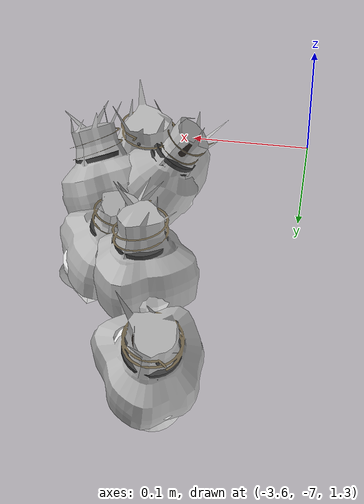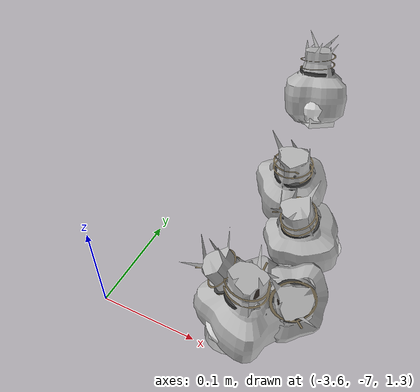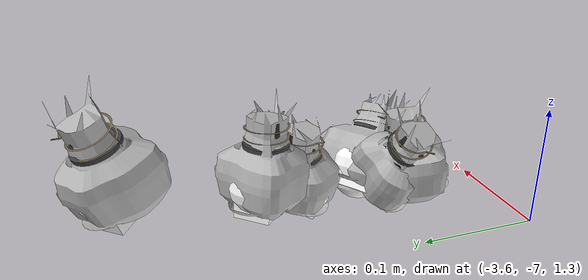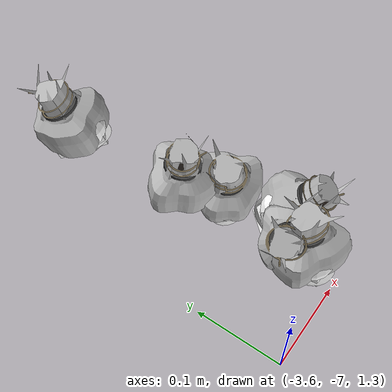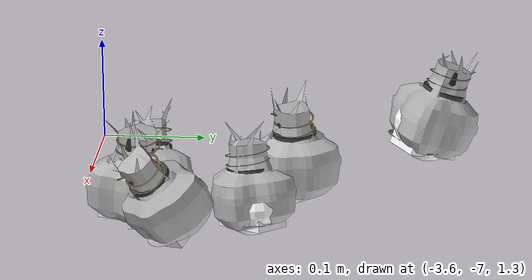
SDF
<sdf version="1.11">
 <world name="peach_orchard">
  <model name="ground">
   <static>true</static>
   <link name="link">
    <visual name="soil">
     <geometry><plane><normal>0 0 1</normal><size>32 22</size></plane></geometry>
     <material>
      <ambient>1 1 1 1</ambient>
      <diffuse>1 1 1 1</diffuse>
      <specular>0.1 0.1 0.1 1</specular>
      <pbr>
       <metal>
        <albedo_map>textures/soil_albedo.png</albedo_map>
        <normal_map type="tangent">textures/soil_normal.png</normal_map>
        <roughness>0.95</roughness>
        <metalness>0</metalness>
       </metal>
      </pbr>
     </material>
    </visual>
    <collision name="c_soil">
     <geometry><plane><normal>0 0 1</normal><size>32 22</size></plane></geometry>
    </collision>
   </link>
  </model>
  <model name="peach_tree_r1_t0_02">
   <pose>-3.51072 -6.6839 1.32639 0 0.34721 1.93507</pose>
   <static>true</static>
   <link name="bag">
    <visual name="bag_mesh">
     <pose>0 0 0.0439079 0 0 0</pose>
     <geometry>
      <mesh><uri>model://peach_sim/meshes/bagged_peach.glb</uri><scale>0.987515 1.07317 0.997907</scale></mesh>
     </geometry>
    </visual>
    <visual name="body">
     <pose>0 0 0.0259079 0 0 0</pose>
     <geometry><ellipsoid><radii>0.0370318 0.0279025 0.0279805</radii></ellipsoid></geometry>
     <material>
      <ambient>1 1 1 1</ambient>
      <diffuse>1 1 1 1</diffuse>
      <specular>0.1 0.1 0.1 1</specular>
      <pbr>
       <metal>
        <albedo_map>textures/paper_bag_albedo.png</albedo_map>
        <normal_map type="tangent">textures/paper_bag_normal.png</normal_map>
        <roughness>0.72</roughness>
        <metalness>0</metalness>
       </metal>
      </pbr>
     </material>
    </visual>
    <visual name="bottom_fold">
     <pose>0 0 0.012 0 0 0.35</pose>
     <geometry><box><size>0.0573993 0.0320879 0.022</size></box></geometry>
     <material>
      <ambient>1 1 1 1</ambient>
      <diffuse>1 1 1 1</diffuse>
      <specular>0.1 0.1 0.1 1</specular>
      <pbr>
       <metal>
        <albedo_map>textures/paper_bag_albedo.png</albedo_map>
        <normal_map type="tangent">textures/paper_bag_normal.png</normal_map>
        <roughness>0.8</roughness>
        <metalness>0</metalness>
       </metal>
      </pbr>
     </material>
    </visual>
    <visual name="fruit">
     <pose>0 0 0.0203116 0 0 0</pose>
     <geometry><sphere><radius>0.027364</radius></sphere></geometry>
     <material>
      <ambient>1 1 1 1</ambient>
      <diffuse>1 1 1 1</diffuse>
      <specular>0.1 0.1 0.1 1</specular>
      <pbr>
       <metal>
        <albedo_map>textures/fruit_skin_albedo.png</albedo_map>
        <normal_map type="tangent">textures/fruit_skin_normal.png</normal_map>
        <roughness>0.55</roughness>
        <metalness>0</metalness>
       </metal>
      </pbr>
     </material>
    </visual>
    <visual name="neck">
     <pose>0 0 0.0608158 0 0 0</pose>
     <geometry><cylinder><radius>0.013</radius><length>0.018</length></cylinder></geometry>
     <material>
      <ambient>1 1 1 1</ambient>
      <diffuse>1 1 1 1</diffuse>
      <specular>0.1 0.1 0.1 1</specular>
      <pbr>
       <metal>
        <albedo_map>textures/paper_bag_albedo.png</albedo_map>
        <normal_map type="tangent">textures/paper_bag_normal.png</normal_map>
        <roughness>0.75</roughness>
        <metalness>0</metalness>
       </metal>
      </pbr>
     </material>
    </visual>
    <visual name="gather">
     <pose>0 0 0.0418158 0 0 0</pose>
     <geometry><cylinder><radius>0.019</radius><length>0.02</length></cylinder></geometry>
     <material>
      <ambient>1 1 1 1</ambient>
      <diffuse>1 1 1 1</diffuse>
      <specular>0.1 0.1 0.1 1</specular>
      <pbr>
       <metal>
        <albedo_map>textures/paper_bag_albedo.png</albedo_map>
        <normal_map type="tangent">textures/paper_bag_normal.png</normal_map>
        <roughness>0.8</roughness>
        <metalness>0</metalness>
       </metal>
      </pbr>
     </material>
    </visual>
    <visual name="inner_paper">
     <pose>0 0 0.0658158 0 0 0</pose>
     <geometry><cylinder><radius>0.01</radius><length>0.008</length></cylinder></geometry>
     <material>
      <ambient>0.180392 0.14902 0.133333 1</ambient>
      <diffuse>0.180392 0.14902 0.133333 1</diffuse>
      <specular>0.1 0.1 0.1 1</specular>
     </material>
    </visual>
    <visual name="wire_0">
     <pose>0 0 0.0558158 0 0 0</pose>
     <geometry><cylinder><radius>0.0205</radius><length>0.0035</length></cylinder></geometry>
     <material>
      <ambient>0.25 0.25 0.25 1</ambient>
      <diffuse>0.25 0.25 0.25 1</diffuse>
      <specular>0.1 0.1 0.1 1</specular>
     </material>
    </visual>
    <visual name="wire_1">
     <pose>0 0 0.0628158 0 0 0</pose>
     <geometry><cylinder><radius>0.0205</radius><length>0.0035</length></cylinder></geometry>
     <material>
      <ambient>0.25 0.25 0.25 1</ambient>
      <diffuse>0.25 0.25 0.25 1</diffuse>
      <specular>0.1 0.1 0.1 1</specular>
     </material>
    </visual>
    <visual name="wire_tail">
     <pose>0.01 0 0.0638158 0 0.521618 0</pose>
     <geometry><cylinder><radius>0.0012</radius><length>0.026</length></cylinder></geometry>
     <material>
      <ambient>0.25 0.25 0.25 1</ambient>
      <diffuse>0.25 0.25 0.25 1</diffuse>
      <specular>0.1 0.1 0.1 1</specular>
     </material>
    </visual>
    <collision name="c_body">
     <pose>0 0 0.0259079 0 0 0</pose>
     <geometry><cylinder><radius>0.0370318</radius><length>0.0518158</length></cylinder></geometry>
    </collision>
   </link>
  </model>
  <model name="peach_tree_r1_t0_03">
   <pose>-3.48896 -6.7995 1.28958 0 0.0650426 -1.07277</pose>
   <static>true</static>
   <link name="bag">
    <visual name="bag_mesh">
     <pose>0 0 0.0437917 0 0 -0</pose>
     <geometry>
      <mesh><uri>model://peach_sim/meshes/bagged_peach.glb</uri><scale>0.949374 1.1218 0.995265</scale></mesh>
     </geometry>
    </visual>
    <visual name="body">
     <pose>0 0 0.0257917 0 0 0</pose>
     <geometry><ellipsoid><radii>0.0356015 0.0291669 0.027855</radii></ellipsoid></geometry>
     <material>
      <ambient>1 1 1 1</ambient>
      <diffuse>1 1 1 1</diffuse>
      <specular>0.1 0.1 0.1 1</specular>
      <pbr>
       <metal>
        <albedo_map>textures/paper_bag_albedo.png</albedo_map>
        <normal_map type="tangent">textures/paper_bag_normal.png</normal_map>
        <roughness>0.72</roughness>
        <metalness>0</metalness>
       </metal>
      </pbr>
     </material>
    </visual>
    <visual name="bottom_fold">
     <pose>0 0 0.012 0 0 0.35</pose>
     <geometry><box><size>0.0551824 0.033542 0.022</size></box></geometry>
     <material>
      <ambient>1 1 1 1</ambient>
      <diffuse>1 1 1 1</diffuse>
      <specular>0.1 0.1 0.1 1</specular>
      <pbr>
       <metal>
        <albedo_map>textures/paper_bag_albedo.png</albedo_map>
        <normal_map type="tangent">textures/paper_bag_normal.png</normal_map>
        <roughness>0.8</roughness>
        <metalness>0</metalness>
       </metal>
      </pbr>
     </material>
    </visual>
    <visual name="fruit">
     <pose>0 0 0.018772 0 0 0</pose>
     <geometry><sphere><radius>0.0257629</radius></sphere></geometry>
     <material>
      <ambient>1 1 1 1</ambient>
      <diffuse>1 1 1 1</diffuse>
      <specular>0.1 0.1 0.1 1</specular>
      <pbr>
       <metal>
        <albedo_map>textures/fruit_skin_albedo.png</albedo_map>
        <normal_map type="tangent">textures/fruit_skin_normal.png</normal_map>
        <roughness>0.55</roughness>
        <metalness>0</metalness>
       </metal>
      </pbr>
     </material>
    </visual>
    <visual name="neck">
     <pose>0 0 0.0605834 0 0 0</pose>
     <geometry><cylinder><radius>0.013</radius><length>0.018</length></cylinder></geometry>
     <material>
      <ambient>1 1 1 1</ambient>
      <diffuse>1 1 1 1</diffuse>
      <specular>0.1 0.1 0.1 1</specular>
      <pbr>
       <metal>
        <albedo_map>textures/paper_bag_albedo.png</albedo_map>
        <normal_map type="tangent">textures/paper_bag_normal.png</normal_map>
        <roughness>0.75</roughness>
        <metalness>0</metalness>
       </metal>
      </pbr>
     </material>
    </visual>
    <visual name="gather">
     <pose>0 0 0.0415834 0 0 0</pose>
     <geometry><cylinder><radius>0.019</radius><length>0.02</length></cylinder></geometry>
     <material>
      <ambient>1 1 1 1</ambient>
      <diffuse>1 1 1 1</diffuse>
      <specular>0.1 0.1 0.1 1</specular>
      <pbr>
       <metal>
        <albedo_map>textures/paper_bag_albedo.png</albedo_map>
        <normal_map type="tangent">textures/paper_bag_normal.png</normal_map>
        <roughness>0.8</roughness>
        <metalness>0</metalness>
       </metal>
      </pbr>
     </material>
    </visual>
    <visual name="inner_paper">
     <pose>0 0 0.0655834 0 0 0</pose>
     <geometry><cylinder><radius>0.01</radius><length>0.008</length></cylinder></geometry>
     <material>
      <ambient>0.180392 0.14902 0.133333 1</ambient>
      <diffuse>0.180392 0.14902 0.133333 1</diffuse>
      <specular>0.1 0.1 0.1 1</specular>
     </material>
    </visual>
    <visual name="wire_0">
     <pose>0 0 0.0555834 0 0 0</pose>
     <geometry><cylinder><radius>0.0205</radius><length>0.0035</length></cylinder></geometry>
     <material>
      <ambient>0.25 0.25 0.25 1</ambient>
      <diffuse>0.25 0.25 0.25 1</diffuse>
      <specular>0.1 0.1 0.1 1</specular>
     </material>
    </visual>
    <visual name="wire_1">
     <pose>0 0 0.0625834 0 0 0</pose>
     <geometry><cylinder><radius>0.0205</radius><length>0.0035</length></cylinder></geometry>
     <material>
      <ambient>0.25 0.25 0.25 1</ambient>
      <diffuse>0.25 0.25 0.25 1</diffuse>
      <specular>0.1 0.1 0.1 1</specular>
     </material>
    </visual>
    <visual name="wire_tail">
     <pose>0.01 0 0.0635834 0 0.521618 0</pose>
     <geometry><cylinder><radius>0.0012</radius><length>0.026</length></cylinder></geometry>
     <material>
      <ambient>0.25 0.25 0.25 1</ambient>
      <diffuse>0.25 0.25 0.25 1</diffuse>
      <specular>0.1 0.1 0.1 1</specular>
     </material>
    </visual>
    <collision name="c_body">
     <pose>0 0 0.0257917 0 0 0</pose>
     <geometry><cylinder><radius>0.0356015</radius><length>0.0515834</length></cylinder></geometry>
    </collision>
   </link>
  </model>
  <model name="peach_tree_r1_t0_04">
   <pose>-3.4728 -6.95639 1.27 0 0.114327 1.14002</pose>
   <static>true</static>
   <link name="bag">
    <visual name="bag_mesh">
     <pose>0 0 0.0428898 0 0 0</pose>
     <geometry>
      <mesh><uri>model://peach_sim/meshes/bagged_peach.glb</uri><scale>1.02231 1.26201 0.974768</scale></mesh>
     </geometry>
    </visual>
    <visual name="body">
     <pose>0 0 0.0248898 0 0 0</pose>
     <geometry><ellipsoid><radii>0.0383366 0.0328122 0.026881</radii></ellipsoid></geometry>
     <material>
      <ambient>1 1 1 1</ambient>
      <diffuse>1 1 1 1</diffuse>
      <specular>0.1 0.1 0.1 1</specular>
      <pbr>
       <metal>
        <albedo_map>textures/paper_bag_albedo.png</albedo_map>
        <normal_map type="tangent">textures/paper_bag_normal.png</normal_map>
        <roughness>0.72</roughness>
        <metalness>0</metalness>
       </metal>
      </pbr>
     </material>
    </visual>
    <visual name="bottom_fold">
     <pose>0 0 0.012 0 0 0.35</pose>
     <geometry><box><size>0.0594218 0.037734 0.022</size></box></geometry>
     <material>
      <ambient>1 1 1 1</ambient>
      <diffuse>1 1 1 1</diffuse>
      <specular>0.1 0.1 0.1 1</specular>
      <pbr>
       <metal>
        <albedo_map>textures/paper_bag_albedo.png</albedo_map>
        <normal_map type="tangent">textures/paper_bag_normal.png</normal_map>
        <roughness>0.8</roughness>
        <metalness>0</metalness>
       </metal>
      </pbr>
     </material>
    </visual>
    <visual name="fruit">
     <pose>0 0 0.0212154 0 0 0</pose>
     <geometry><sphere><radius>0.028304</radius></sphere></geometry>
     <material>
      <ambient>1 1 1 1</ambient>
      <diffuse>1 1 1 1</diffuse>
      <specular>0.1 0.1 0.1 1</specular>
      <pbr>
       <metal>
        <albedo_map>textures/fruit_skin_albedo.png</albedo_map>
        <normal_map type="tangent">textures/fruit_skin_normal.png</normal_map>
        <roughness>0.55</roughness>
        <metalness>0</metalness>
       </metal>
      </pbr>
     </material>
    </visual>
    <visual name="neck">
     <pose>0 0 0.0587796 0 0 0</pose>
     <geometry><cylinder><radius>0.013</radius><length>0.018</length></cylinder></geometry>
     <material>
      <ambient>1 1 1 1</ambient>
      <diffuse>1 1 1 1</diffuse>
      <specular>0.1 0.1 0.1 1</specular>
      <pbr>
       <metal>
        <albedo_map>textures/paper_bag_albedo.png</albedo_map>
        <normal_map type="tangent">textures/paper_bag_normal.png</normal_map>
        <roughness>0.75</roughness>
        <metalness>0</metalness>
       </metal>
      </pbr>
     </material>
    </visual>
    <visual name="gather">
     <pose>0 0 0.0397796 0 0 0</pose>
     <geometry><cylinder><radius>0.019</radius><length>0.02</length></cylinder></geometry>
     <material>
      <ambient>1 1 1 1</ambient>
      <diffuse>1 1 1 1</diffuse>
      <specular>0.1 0.1 0.1 1</specular>
      <pbr>
       <metal>
        <albedo_map>textures/paper_bag_albedo.png</albedo_map>
        <normal_map type="tangent">textures/paper_bag_normal.png</normal_map>
        <roughness>0.8</roughness>
        <metalness>0</metalness>
       </metal>
      </pbr>
     </material>
    </visual>
    <visual name="inner_paper">
     <pose>0 0 0.0637796 0 0 0</pose>
     <geometry><cylinder><radius>0.01</radius><length>0.008</length></cylinder></geometry>
     <material>
      <ambient>0.180392 0.14902 0.133333 1</ambient>
      <diffuse>0.180392 0.14902 0.133333 1</diffuse>
      <specular>0.1 0.1 0.1 1</specular>
     </material>
    </visual>
    <visual name="wire_0">
     <pose>0 0 0.0537796 0 0 0</pose>
     <geometry><cylinder><radius>0.0205</radius><length>0.0035</length></cylinder></geometry>
     <material>
      <ambient>0.25 0.25 0.25 1</ambient>
      <diffuse>0.25 0.25 0.25 1</diffuse>
      <specular>0.1 0.1 0.1 1</specular>
     </material>
    </visual>
    <visual name="wire_1">
     <pose>0 0 0.0607796 0 0 0</pose>
     <geometry><cylinder><radius>0.0205</radius><length>0.0035</length></cylinder></geometry>
     <material>
      <ambient>0.25 0.25 0.25 1</ambient>
      <diffuse>0.25 0.25 0.25 1</diffuse>
      <specular>0.1 0.1 0.1 1</specular>
     </material>
    </visual>
    <visual name="wire_tail">
     <pose>0.01 0 0.0617796 0 0.521618 0</pose>
     <geometry><cylinder><radius>0.0012</radius><length>0.026</length></cylinder></geometry>
     <material>
      <ambient>0.25 0.25 0.25 1</ambient>
      <diffuse>0.25 0.25 0.25 1</diffuse>
      <specular>0.1 0.1 0.1 1</specular>
     </material>
    </visual>
    <collision name="c_body">
     <pose>0 0 0.0248898 0 0 0</pose>
     <geometry><cylinder><radius>0.0383366</radius><length>0.0497796</length></cylinder></geometry>
    </collision>
   </link>
  </model>
  <model name="peach_tree_r1_t0_06">
   <pose>-3.45 -6.84002 1.27 0 0.182281 -2.71467</pose>
   <static>true</static>
   <link name="bag">
    <visual name="bag_mesh">
     <pose>0 0 0.0406023 0 0 -0</pose>
     <geometry>
      <mesh><uri>model://peach_sim/meshes/bagged_peach.glb</uri><scale>1.02224 1.09947 0.922779</scale></mesh>
     </geometry>
    </visual>
    <visual name="body">
     <pose>0 0 0.0226023 0 0 0</pose>
     <geometry><ellipsoid><radii>0.0383342 0.0285863 0.0244105</radii></ellipsoid></geometry>
     <material>
      <ambient>1 1 1 1</ambient>
      <diffuse>1 1 1 1</diffuse>
      <specular>0.1 0.1 0.1 1</specular>
      <pbr>
       <metal>
        <albedo_map>textures/paper_bag_albedo.png</albedo_map>
        <normal_map type="tangent">textures/paper_bag_normal.png</normal_map>
        <roughness>0.72</roughness>
        <metalness>0</metalness>
       </metal>
      </pbr>
     </material>
    </visual>
    <visual name="bottom_fold">
     <pose>0 0 0.012 0 0 0.35</pose>
     <geometry><box><size>0.059418 0.0328742 0.022</size></box></geometry>
     <material>
      <ambient>1 1 1 1</ambient>
      <diffuse>1 1 1 1</diffuse>
      <specular>0.1 0.1 0.1 1</specular>
      <pbr>
       <metal>
        <albedo_map>textures/paper_bag_albedo.png</albedo_map>
        <normal_map type="tangent">textures/paper_bag_normal.png</normal_map>
        <roughness>0.8</roughness>
        <metalness>0</metalness>
       </metal>
      </pbr>
     </material>
    </visual>
    <visual name="fruit">
     <pose>0 0 0.019939 0 0 0</pose>
     <geometry><sphere><radius>0.0269766</radius></sphere></geometry>
     <material>
      <ambient>1 1 1 1</ambient>
      <diffuse>1 1 1 1</diffuse>
      <specular>0.1 0.1 0.1 1</specular>
      <pbr>
       <metal>
        <albedo_map>textures/fruit_skin_albedo.png</albedo_map>
        <normal_map type="tangent">textures/fruit_skin_normal.png</normal_map>
        <roughness>0.55</roughness>
        <metalness>0</metalness>
       </metal>
      </pbr>
     </material>
    </visual>
    <visual name="neck">
     <pose>0 0 0.0542045 0 0 0</pose>
     <geometry><cylinder><radius>0.013</radius><length>0.018</length></cylinder></geometry>
     <material>
      <ambient>1 1 1 1</ambient>
      <diffuse>1 1 1 1</diffuse>
      <specular>0.1 0.1 0.1 1</specular>
      <pbr>
       <metal>
        <albedo_map>textures/paper_bag_albedo.png</albedo_map>
        <normal_map type="tangent">textures/paper_bag_normal.png</normal_map>
        <roughness>0.75</roughness>
        <metalness>0</metalness>
       </metal>
      </pbr>
     </material>
    </visual>
    <visual name="gather">
     <pose>0 0 0.0352045 0 0 0</pose>
     <geometry><cylinder><radius>0.019</radius><length>0.02</length></cylinder></geometry>
     <material>
      <ambient>1 1 1 1</ambient>
      <diffuse>1 1 1 1</diffuse>
      <specular>0.1 0.1 0.1 1</specular>
      <pbr>
       <metal>
        <albedo_map>textures/paper_bag_albedo.png</albedo_map>
        <normal_map type="tangent">textures/paper_bag_normal.png</normal_map>
        <roughness>0.8</roughness>
        <metalness>0</metalness>
       </metal>
      </pbr>
     </material>
    </visual>
    <visual name="inner_paper">
     <pose>0 0 0.0592045 0 0 0</pose>
     <geometry><cylinder><radius>0.01</radius><length>0.008</length></cylinder></geometry>
     <material>
      <ambient>0.180392 0.14902 0.133333 1</ambient>
      <diffuse>0.180392 0.14902 0.133333 1</diffuse>
      <specular>0.1 0.1 0.1 1</specular>
     </material>
    </visual>
    <visual name="wire_0">
     <pose>0 0 0.0492045 0 0 0</pose>
     <geometry><cylinder><radius>0.0205</radius><length>0.0035</length></cylinder></geometry>
     <material>
      <ambient>0.25 0.25 0.25 1</ambient>
      <diffuse>0.25 0.25 0.25 1</diffuse>
      <specular>0.1 0.1 0.1 1</specular>
     </material>
    </visual>
    <visual name="wire_1">
     <pose>0 0 0.0562045 0 0 0</pose>
     <geometry><cylinder><radius>0.0205</radius><length>0.0035</length></cylinder></geometry>
     <material>
      <ambient>0.25 0.25 0.25 1</ambient>
      <diffuse>0.25 0.25 0.25 1</diffuse>
      <specular>0.1 0.1 0.1 1</specular>
     </material>
    </visual>
    <visual name="wire_tail">
     <pose>0.01 0 0.0572045 0 0.521618 0</pose>
     <geometry><cylinder><radius>0.0012</radius><length>0.026</length></cylinder></geometry>
     <material>
      <ambient>0.25 0.25 0.25 1</ambient>
      <diffuse>0.25 0.25 0.25 1</diffuse>
      <specular>0.1 0.1 0.1 1</specular>
     </material>
    </visual>
    <collision name="c_body">
     <pose>0 0 0.0226023 0 0 0</pose>
     <geometry><cylinder><radius>0.0383342</radius><length>0.0452045</length></cylinder></geometry>
    </collision>
   </link>
  </model>
  <model name="peach_tree_r1_t0_07">
   <pose>-3.45 -6.90383 1.27 0 0.59921 -0.96637</pose>
   <static>true</static>
   <link name="bag">
    <visual name="bag_mesh">
     <pose>0 0 0.0450857 0 0 -0</pose>
     <geometry>
      <mesh><uri>model://peach_sim/meshes/bagged_peach.glb</uri><scale>0.954505 1.16799 1.02467</scale></mesh>
     </geometry>
    </visual>
    <visual name="body">
     <pose>0 0 0.0270857 0 0 0</pose>
     <geometry><ellipsoid><radii>0.0357939 0.0303677 0.0292525</radii></ellipsoid></geometry>
     <material>
      <ambient>1 1 1 1</ambient>
      <diffuse>1 1 1 1</diffuse>
      <specular>0.1 0.1 0.1 1</specular>
      <pbr>
       <metal>
        <albedo_map>textures/paper_bag_albedo.png</albedo_map>
        <normal_map type="tangent">textures/paper_bag_normal.png</normal_map>
        <roughness>0.72</roughness>
        <metalness>0</metalness>
       </metal>
      </pbr>
     </material>
    </visual>
    <visual name="bottom_fold">
     <pose>0 0 0.012 0 0 0.35</pose>
     <geometry><box><size>0.0554806 0.0349229 0.022</size></box></geometry>
     <material>
      <ambient>1 1 1 1</ambient>
      <diffuse>1 1 1 1</diffuse>
      <specular>0.1 0.1 0.1 1</specular>
      <pbr>
       <metal>
        <albedo_map>textures/paper_bag_albedo.png</albedo_map>
        <normal_map type="tangent">textures/paper_bag_normal.png</normal_map>
        <roughness>0.8</roughness>
        <metalness>0</metalness>
       </metal>
      </pbr>
     </material>
    </visual>
    <visual name="fruit">
     <pose>0 0 0.0191071 0 0 0</pose>
     <geometry><sphere><radius>0.0261114</radius></sphere></geometry>
     <material>
      <ambient>1 1 1 1</ambient>
      <diffuse>1 1 1 1</diffuse>
      <specular>0.1 0.1 0.1 1</specular>
      <pbr>
       <metal>
        <albedo_map>textures/fruit_skin_albedo.png</albedo_map>
        <normal_map type="tangent">textures/fruit_skin_normal.png</normal_map>
        <roughness>0.55</roughness>
        <metalness>0</metalness>
       </metal>
      </pbr>
     </material>
    </visual>
    <visual name="neck">
     <pose>0 0 0.0631713 0 0 0</pose>
     <geometry><cylinder><radius>0.013</radius><length>0.018</length></cylinder></geometry>
     <material>
      <ambient>1 1 1 1</ambient>
      <diffuse>1 1 1 1</diffuse>
      <specular>0.1 0.1 0.1 1</specular>
      <pbr>
       <metal>
        <albedo_map>textures/paper_bag_albedo.png</albedo_map>
        <normal_map type="tangent">textures/paper_bag_normal.png</normal_map>
        <roughness>0.75</roughness>
        <metalness>0</metalness>
       </metal>
      </pbr>
     </material>
    </visual>
    <visual name="gather">
     <pose>0 0 0.0441713 0 0 0</pose>
     <geometry><cylinder><radius>0.019</radius><length>0.02</length></cylinder></geometry>
     <material>
      <ambient>1 1 1 1</ambient>
      <diffuse>1 1 1 1</diffuse>
      <specular>0.1 0.1 0.1 1</specular>
      <pbr>
       <metal>
        <albedo_map>textures/paper_bag_albedo.png</albedo_map>
        <normal_map type="tangent">textures/paper_bag_normal.png</normal_map>
        <roughness>0.8</roughness>
        <metalness>0</metalness>
       </metal>
      </pbr>
     </material>
    </visual>
    <visual name="inner_paper">
     <pose>0 0 0.0681713 0 0 0</pose>
     <geometry><cylinder><radius>0.01</radius><length>0.008</length></cylinder></geometry>
     <material>
      <ambient>0.180392 0.14902 0.133333 1</ambient>
      <diffuse>0.180392 0.14902 0.133333 1</diffuse>
      <specular>0.1 0.1 0.1 1</specular>
     </material>
    </visual>
    <visual name="wire_0">
     <pose>0 0 0.0581713 0 0 0</pose>
     <geometry><cylinder><radius>0.0205</radius><length>0.0035</length></cylinder></geometry>
     <material>
      <ambient>0.25 0.25 0.25 1</ambient>
      <diffuse>0.25 0.25 0.25 1</diffuse>
      <specular>0.1 0.1 0.1 1</specular>
     </material>
    </visual>
    <visual name="wire_1">
     <pose>0 0 0.0651713 0 0 0</pose>
     <geometry><cylinder><radius>0.0205</radius><length>0.0035</length></cylinder></geometry>
     <material>
      <ambient>0.25 0.25 0.25 1</ambient>
      <diffuse>0.25 0.25 0.25 1</diffuse>
      <specular>0.1 0.1 0.1 1</specular>
     </material>
    </visual>
    <visual name="wire_tail">
     <pose>0.01 0 0.0661713 0 0.521618 0</pose>
     <geometry><cylinder><radius>0.0012</radius><length>0.026</length></cylinder></geometry>
     <material>
      <ambient>0.25 0.25 0.25 1</ambient>
      <diffuse>0.25 0.25 0.25 1</diffuse>
      <specular>0.1 0.1 0.1 1</specular>
     </material>
    </visual>
    <collision name="c_body">
     <pose>0 0 0.0270857 0 0 0</pose>
     <geometry><cylinder><radius>0.0357939</radius><length>0.0541713</length></cylinder></geometry>
    </collision>
   </link>
  </model>
  <model name="peach_tree_r1_t0_08">
   <pose>-3.45 -6.93203 1.27 0 0.622786 -2.94762</pose>
   <static>true</static>
   <link name="bag">
    <visual name="bag_mesh">
     <pose>0 0 0.049367 0 0 -0</pose>
     <geometry>
      <mesh><uri>model://peach_sim/meshes/bagged_peach.glb</uri><scale>0.93311 1.09512 1.12198</scale></mesh>
     </geometry>
    </visual>
    <visual name="body">
     <pose>0 0 0.031367 0 0 0</pose>
     <geometry><ellipsoid><radii>0.0349916 0.0284731 0.0338764</radii></ellipsoid></geometry>
     <material>
      <ambient>1 1 1 1</ambient>
      <diffuse>1 1 1 1</diffuse>
      <specular>0.1 0.1 0.1 1</specular>
      <pbr>
       <metal>
        <albedo_map>textures/paper_bag_albedo.png</albedo_map>
        <normal_map type="tangent">textures/paper_bag_normal.png</normal_map>
        <roughness>0.72</roughness>
        <metalness>0</metalness>
       </metal>
      </pbr>
     </material>
    </visual>
    <visual name="bottom_fold">
     <pose>0 0 0.012 0 0 0.35</pose>
     <geometry><box><size>0.054237 0.032744 0.022</size></box></geometry>
     <material>
      <ambient>1 1 1 1</ambient>
      <diffuse>1 1 1 1</diffuse>
      <specular>0.1 0.1 0.1 1</specular>
      <pbr>
       <metal>
        <albedo_map>textures/paper_bag_albedo.png</albedo_map>
        <normal_map type="tangent">textures/paper_bag_normal.png</normal_map>
        <roughness>0.8</roughness>
        <metalness>0</metalness>
       </metal>
      </pbr>
     </material>
    </visual>
    <visual name="fruit">
     <pose>0 0 0.0177009 0 0 0</pose>
     <geometry><sphere><radius>0.0246489</radius></sphere></geometry>
     <material>
      <ambient>1 1 1 1</ambient>
      <diffuse>1 1 1 1</diffuse>
      <specular>0.1 0.1 0.1 1</specular>
      <pbr>
       <metal>
        <albedo_map>textures/fruit_skin_albedo.png</albedo_map>
        <normal_map type="tangent">textures/fruit_skin_normal.png</normal_map>
        <roughness>0.55</roughness>
        <metalness>0</metalness>
       </metal>
      </pbr>
     </material>
    </visual>
    <visual name="neck">
     <pose>0 0 0.071734 0 0 0</pose>
     <geometry><cylinder><radius>0.013</radius><length>0.018</length></cylinder></geometry>
     <material>
      <ambient>1 1 1 1</ambient>
      <diffuse>1 1 1 1</diffuse>
      <specular>0.1 0.1 0.1 1</specular>
      <pbr>
       <metal>
        <albedo_map>textures/paper_bag_albedo.png</albedo_map>
        <normal_map type="tangent">textures/paper_bag_normal.png</normal_map>
        <roughness>0.75</roughness>
        <metalness>0</metalness>
       </metal>
      </pbr>
     </material>
    </visual>
    <visual name="gather">
     <pose>0 0 0.052734 0 0 0</pose>
     <geometry><cylinder><radius>0.019</radius><length>0.02</length></cylinder></geometry>
     <material>
      <ambient>1 1 1 1</ambient>
      <diffuse>1 1 1 1</diffuse>
      <specular>0.1 0.1 0.1 1</specular>
      <pbr>
       <metal>
        <albedo_map>textures/paper_bag_albedo.png</albedo_map>
        <normal_map type="tangent">textures/paper_bag_normal.png</normal_map>
        <roughness>0.8</roughness>
        <metalness>0</metalness>
       </metal>
      </pbr>
     </material>
    </visual>
    <visual name="inner_paper">
     <pose>0 0 0.076734 0 0 0</pose>
     <geometry><cylinder><radius>0.01</radius><length>0.008</length></cylinder></geometry>
     <material>
      <ambient>0.180392 0.14902 0.133333 1</ambient>
      <diffuse>0.180392 0.14902 0.133333 1</diffuse>
      <specular>0.1 0.1 0.1 1</specular>
     </material>
    </visual>
    <visual name="wire_0">
     <pose>0 0 0.066734 0 0 0</pose>
     <geometry><cylinder><radius>0.0205</radius><length>0.0035</length></cylinder></geometry>
     <material>
      <ambient>0.25 0.25 0.25 1</ambient>
      <diffuse>0.25 0.25 0.25 1</diffuse>
      <specular>0.1 0.1 0.1 1</specular>
     </material>
    </visual>
    <visual name="wire_1">
     <pose>0 0 0.073734 0 0 0</pose>
     <geometry><cylinder><radius>0.0205</radius><length>0.0035</length></cylinder></geometry>
     <material>
      <ambient>0.25 0.25 0.25 1</ambient>
      <diffuse>0.25 0.25 0.25 1</diffuse>
      <specular>0.1 0.1 0.1 1</specular>
     </material>
    </visual>
    <visual name="wire_tail">
     <pose>0.01 0 0.074734 0 0.521618 0</pose>
     <geometry><cylinder><radius>0.0012</radius><length>0.026</length></cylinder></geometry>
     <material>
      <ambient>0.25 0.25 0.25 1</ambient>
      <diffuse>0.25 0.25 0.25 1</diffuse>
      <specular>0.1 0.1 0.1 1</specular>
     </material>
    </visual>
    <collision name="c_body">
     <pose>0 0 0.031367 0 0 0</pose>
     <geometry><cylinder><radius>0.0349916</radius><length>0.062734</length></cylinder></geometry>
    </collision>
   </link>
  </model>
 </world>
</sdf>
